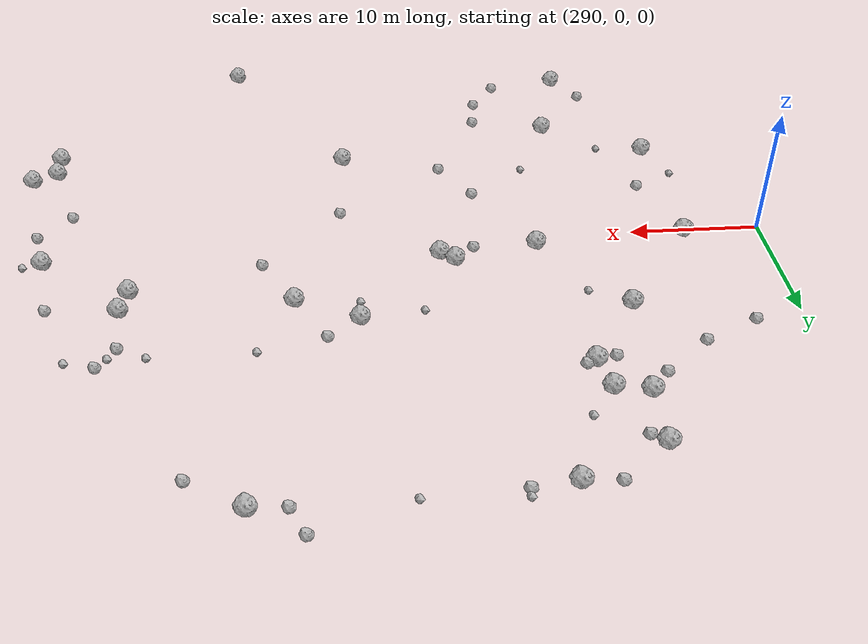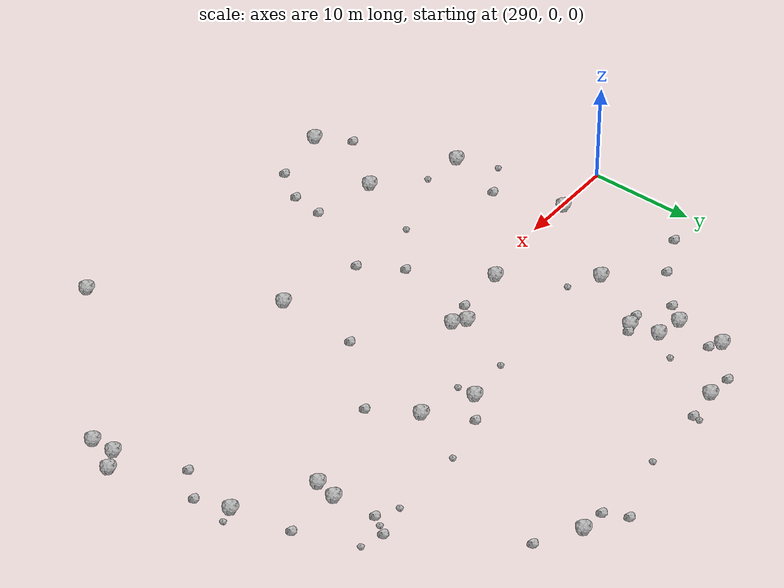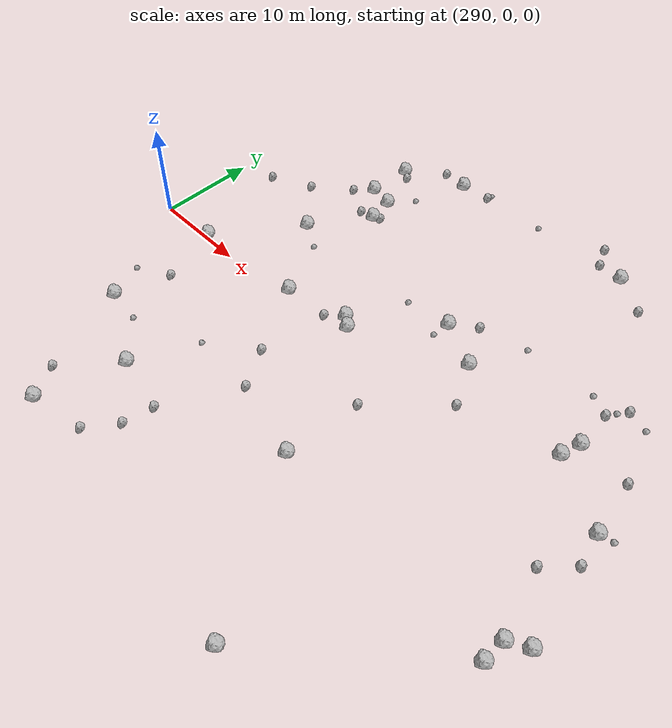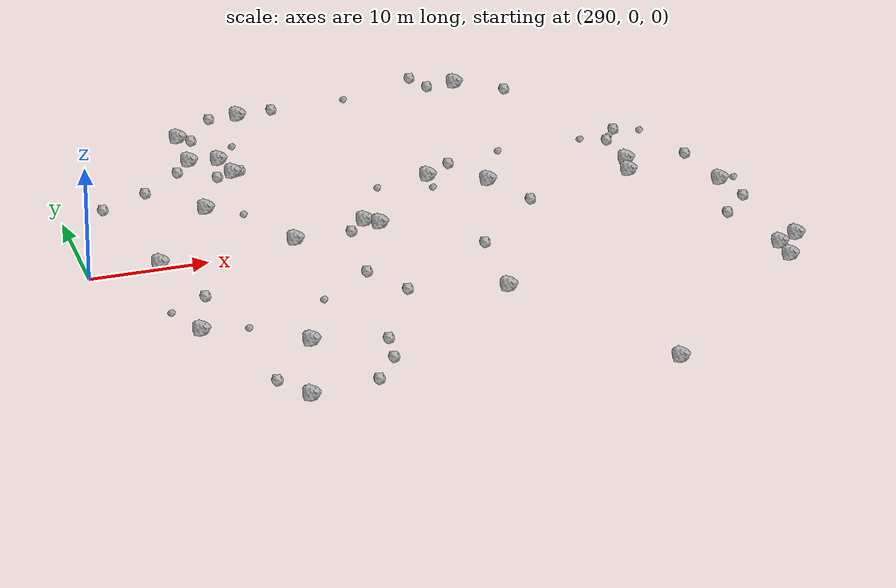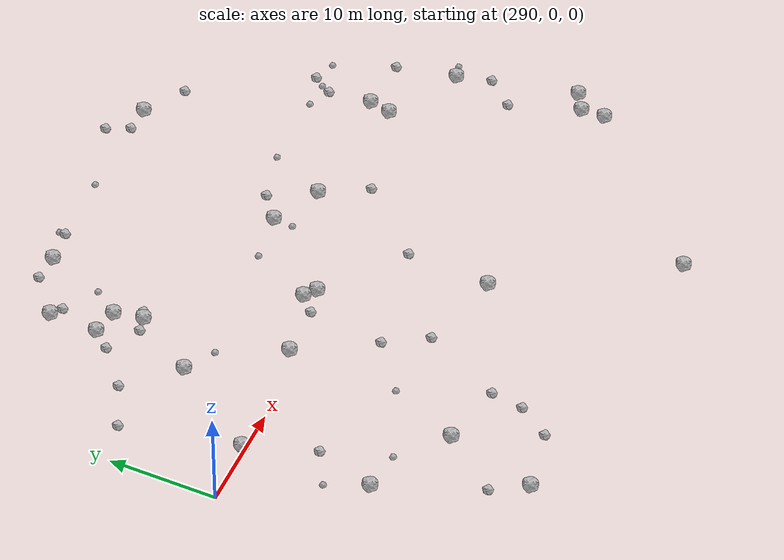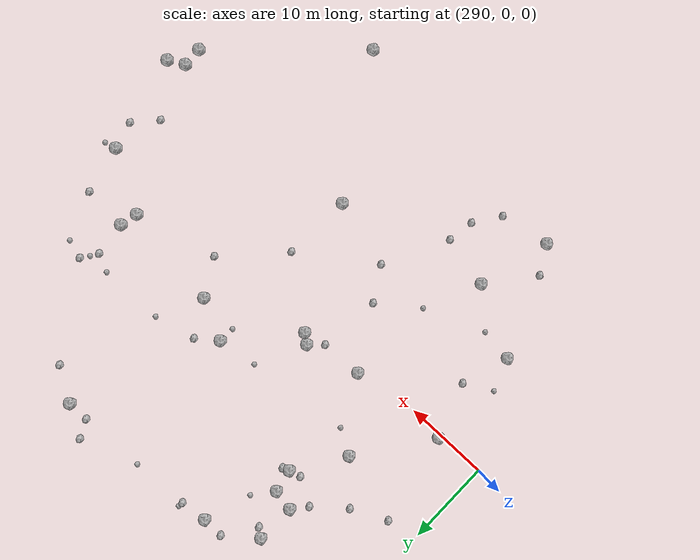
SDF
<sdf version="1.6">
 <world name="default">
  <include><uri>model://sun</uri></include>
  <model name="rock1_8_3">
   <include><uri>model://rock1</uri><pose>331.2763867959711 -26.58433275599936 0.5 0 0 0</pose></include>
  </model>
  <model name="rock1_8_4">
   <include><uri>model://rock1</uri><pose>347.4628140006067 -9.867977239348289 0.5 0 0 0</pose></include>
  </model>
  <model name="rock1_8_5">
   <include><uri>model://rock1</uri><pose>307.66969848672136 1.2108708390870149 0.5 0 0 0</pose></include>
  </model>
  <model name="rock1_8_6">
   <include><uri>model://rock1</uri><pose>345.6662488401135 -13.173719941937101 0.5 0 0 0</pose></include>
  </model>
  <model name="rock1_8_7">
   <include><uri>model://rock1</uri><pose>345.6291139865353 -10.909110826896779 0.5 0 0 0</pose></include>
  </model>
  <model name="rock1_8_8">
   <include><uri>model://rock1</uri><pose>344.9292398369607 1.340743395373785 0.5 0 0 0</pose></include>
  </model>
  <model name="rock1_8_9">
   <include><uri>model://rock1</uri><pose>338.60746049533316 7.253700193090836 0.5 0 0 0</pose></include>
  </model>
  <model name="rock1_8_10">
   <include><uri>model://rock1</uri><pose>338.1076165857296 5.18001861448635 0.5 0 0 0</pose></include>
  </model>
  <model name="rock1_8_11">
   <include><uri>model://rock1</uri><pose>296.470406529504 -11.514198985518366 0.5 0 0 0</pose></include>
  </model>
  <model name="rock1_8_12">
   <include><uri>model://rock1</uri><pose>296.02119521111877 0.35633959018404227 0.5 0 0 0</pose></include>
  </model>
  <model name="rock1_8_13">
   <include><uri>model://rock1</uri><pose>326.12255900086143 6.894805335296667 0.5 0 0 0</pose></include>
  </model>
  <model name="rock1_8_14">
   <include><uri>model://rock1</uri><pose>314.0530496293902 2.806160532586908 0.5 0 0 0</pose></include>
  </model>
  <model name="rock1_8_15">
   <include><uri>model://rock1</uri><pose>321.4803542374907 9.151340512008964 0.5 0 0 0</pose></include>
  </model>
  <model name="rock1_8_16">
   <include><uri>model://rock1</uri><pose>329.04555359303583 25.91265924832009 0.5 0 0 0</pose></include>
  </model>
  <model name="rock1_8_17">
   <include><uri>model://rock1</uri><pose>304.3527539980269 -15.634330962954213 0.5 0 0 0</pose></include>
  </model>
  <model name="rock1_8_18">
   <include><uri>model://rock1</uri><pose>301.9786790895718 8.729280649027459 0.5 0 0 0</pose></include>
  </model>
  <model name="rock1_8_19">
   <include><uri>model://rock1</uri><pose>302.92441245460213 22.30204203802227 0.5 0 0 0</pose></include>
  </model>
  <model name="rock1_8_20">
   <include><uri>model://rock1</uri><pose>305.8046566649746 14.532325343113946 0.5 0 0 0</pose></include>
  </model>
  <model name="rock1_8_21">
   <include><uri>model://rock1</uri><pose>308.9883090653549 25.098403930713154 0.5 0 0 0</pose></include>
  </model>
  <model name="rock1_8_22">
   <include><uri>model://rock1</uri><pose>302.03447229207154 -23.987726755044243 0.5 0 0 0</pose></include>
  </model>
  <model name="rock1_8_23">
   <include><uri>model://rock1</uri><pose>315.14279577914624 1.9700204538120794 0.5 0 0 0</pose></include>
  </model>
  <model name="rock1_8_24">
   <include><uri>model://rock1</uri><pose>302.77942531354864 17.6815652834821 0.5 0 0 0</pose></include>
  </model>
  <model name="rock1_8_25">
   <include><uri>model://rock1</uri><pose>305.2608557363072 17.220086018017135 0.5 0 0 0</pose></include>
  </model>
  <model name="rock1_8_26">
   <include><uri>model://rock1</uri><pose>321.9921579571177 -11.570509765338553 0.5 0 0 0</pose></include>
  </model>
  <model name="rock2_8_0">
   <include><uri>model://rock2</uri><pose>332.860265845877 23.59389555465372 0.3 0 0 0</pose></include>
  </model>
  <model name="rock2_8_1">
   <include><uri>model://rock2</uri><pose>345.7582244665437 -1.849776960360824 0.3 0 0 0</pose></include>
  </model>
  <model name="rock2_8_2">
   <include><uri>model://rock2</uri><pose>314.0649080639788 -9.522421986618372 0.3 0 0 0</pose></include>
  </model>
  <model name="rock2_8_3">
   <include><uri>model://rock2</uri><pose>304.3518174764907 14.242014997326493 0.3 0 0 0</pose></include>
  </model>
  <model name="rock2_8_4">
   <include><uri>model://rock2</uri><pose>306.4939333365612 14.899321707061944 0.3 0 0 0</pose></include>
  </model>
  <model name="rock2_8_5">
   <include><uri>model://rock2</uri><pose>298.1475972004685 -5.993733952972782 0.3 0 0 0</pose></include>
  </model>
  <model name="rock2_8_6">
   <include><uri>model://rock2</uri><pose>312.07856197731405 25.504143464517227 0.3 0 0 0</pose></include>
  </model>
  <model name="rock2_8_7">
   <include><uri>model://rock2</uri><pose>339.454453444618 13.19897979144939 0.3 0 0 0</pose></include>
  </model>
  <model name="rock2_8_8">
   <include><uri>model://rock2</uri><pose>323.818677848698 11.034503259107538 0.3 0 0 0</pose></include>
  </model>
  <model name="rock2_8_9">
   <include><uri>model://rock2</uri><pose>328.4700592033453 2.6849658527822555 0.3 0 0 0</pose></include>
  </model>
  <model name="rock2_8_10">
   <include><uri>model://rock2</uri><pose>301.301024751187 16.02119527640353 0.3 0 0 0</pose></include>
  </model>
  <model name="rock2_8_11">
   <include><uri>model://rock2</uri><pose>325.487073898696 28.135269515057367 0.3 0 0 0</pose></include>
  </model>
  <model name="rock2_8_12">
   <include><uri>model://rock2</uri><pose>300.1050244833897 -20.8549868488489 0.3 0 0 0</pose></include>
  </model>
  <model name="rock2_8_13">
   <include><uri>model://rock2</uri><pose>303.8791831404668 21.603388579683994 0.3 0 0 0</pose></include>
  </model>
  <model name="rock2_8_14">
   <include><uri>model://rock2</uri><pose>310.28155163752444 -16.88868150040478 0.3 0 0 0</pose></include>
  </model>
  <model name="rock2_8_15">
   <include><uri>model://rock2</uri><pose>307.74131758940223 -22.903465433472572 0.3 0 0 0</pose></include>
  </model>
  <model name="rock2_8_16">
   <include><uri>model://rock2</uri><pose>322.44832376688305 -3.646577076568221 0.3 0 0 0</pose></include>
  </model>
  <model name="rock2_8_17">
   <include><uri>model://rock2</uri><pose>309.813777667599 -19.930078940958953 0.3 0 0 0</pose></include>
  </model>
  <model name="rock2_8_18">
   <include><uri>model://rock2</uri><pose>306.40173183559546 25.249596038112095 0.3 0 0 0</pose></include>
  </model>
  <model name="rock2_8_19">
   <include><uri>model://rock2</uri><pose>343.4243151210155 -4.427555235468109 0.3 0 0 0</pose></include>
  </model>
  <model name="rock2_8_20">
   <include><uri>model://rock2</uri><pose>343.7728363783789 6.983842110066149 0.3 0 0 0</pose></include>
  </model>
  <model name="rock2_8_21">
   <include><uri>model://rock2</uri><pose>326.4838220817647 26.024077917087624 0.3 0 0 0</pose></include>
  </model>
  <model name="rock2_8_22">
   <include><uri>model://rock2</uri><pose>293.681780839415 11.1004564346905 0.3 0 0 0</pose></include>
  </model>
  <model name="rock2_8_23">
   <include><uri>model://rock2</uri><pose>312.48812427754564 1.425954586103753 0.3 0 0 0</pose></include>
  </model>
  <model name="rock2_8_24">
   <include><uri>model://rock2</uri><pose>297.78389826924615 13.074451078516255 0.3 0 0 0</pose></include>
  </model>
  <model name="rock2_8_25">
   <include><uri>model://rock2</uri><pose>338.2029467126104 11.34995485595973 0.3 0 0 0</pose></include>
  </model>
  <model name="rock2_8_26">
   <include><uri>model://rock2</uri><pose>311.74584784691854 -5.711255376466724 0.3 0 0 0</pose></include>
  </model>
  <model name="rock3_8_0">
   <include><uri>model://rock3</uri><pose>346.25596333848114 1.6922094915016714 0.2 0 0 0</pose></include>
  </model>
  <model name="rock3_8_1">
   <include><uri>model://rock3</uri><pose>321.325973277565 7.2713530935238 0.2 0 0 0</pose></include>
  </model>
  <model name="rock3_8_2">
   <include><uri>model://rock3</uri><pose>328.6432954038505 12.187560870470179 0.2 0 0 0</pose></include>
  </model>
  <model name="rock3_8_3">
   <include><uri>model://rock3</uri><pose>341.6219071358056 12.508768759722834 0.2 0 0 0</pose></include>
  </model>
  <model name="rock3_8_4">
   <include><uri>model://rock3</uri><pose>300.19711982760464 -12.002036412670662 0.2 0 0 0</pose></include>
  </model>
  <model name="rock3_8_5">
   <include><uri>model://rock3</uri><pose>307.02842294211376 19.64251992393215 0.2 0 0 0</pose></include>
  </model>
  <model name="rock3_8_6">
   <include><uri>model://rock3</uri><pose>316.79304754226985 8.505685682815567 0.2 0 0 0</pose></include>
  </model>
  <model name="rock3_8_7">
   <include><uri>model://rock3</uri><pose>294.9139629158267 -7.805550609527746 0.2 0 0 0</pose></include>
  </model>
  <model name="rock3_8_8">
   <include><uri>model://rock3</uri><pose>307.16667838136004 -9.18431074356209 0.2 0 0 0</pose></include>
  </model>
  <model name="rock3_8_9">
   <include><uri>model://rock3</uri><pose>312.1003854191375 26.06231476286235 0.2 0 0 0</pose></include>
  </model>
  <model name="rock3_8_10">
   <include><uri>model://rock3</uri><pose>338.7393893645895 12.239976871007094 0.2 0 0 0</pose></include>
  </model>
  <model name="rock3_8_11">
   <include><uri>model://rock3</uri><pose>336.1118724788106 12.302271369567897 0.2 0 0 0</pose></include>
  </model>
  <model name="rock3_8_12">
   <include><uri>model://rock3</uri><pose>304.76728736592565 7.080148941930901 0.2 0 0 0</pose></include>
  </model>
  <model name="rock3_8_13">
   <include><uri>model://rock3</uri><pose>318.7421949567839 25.80353473152956 0.2 0 0 0</pose></include>
  </model>
 </world>
</sdf>
